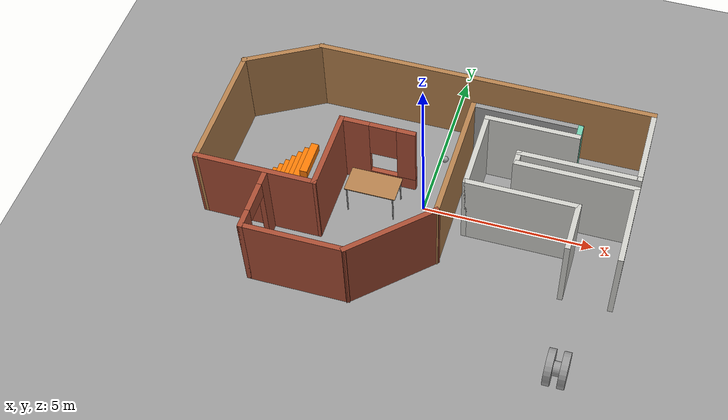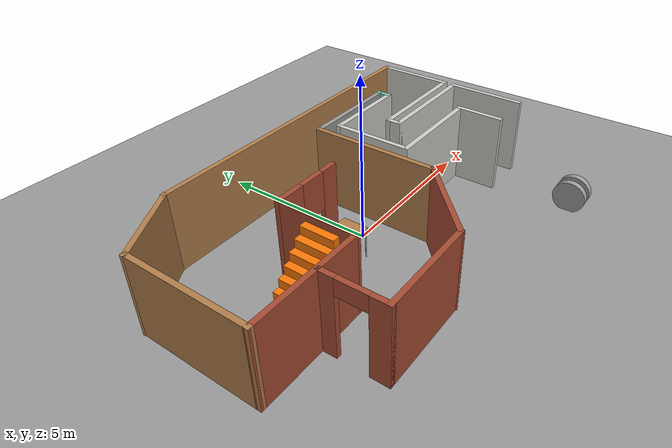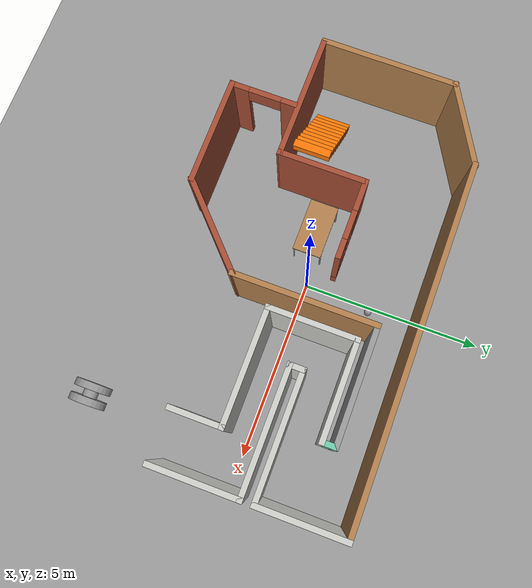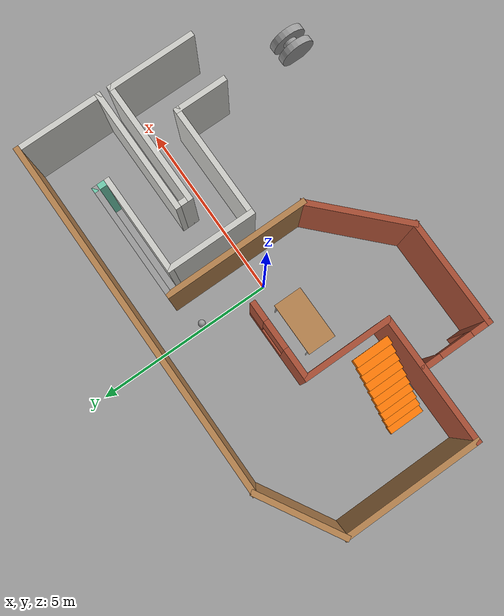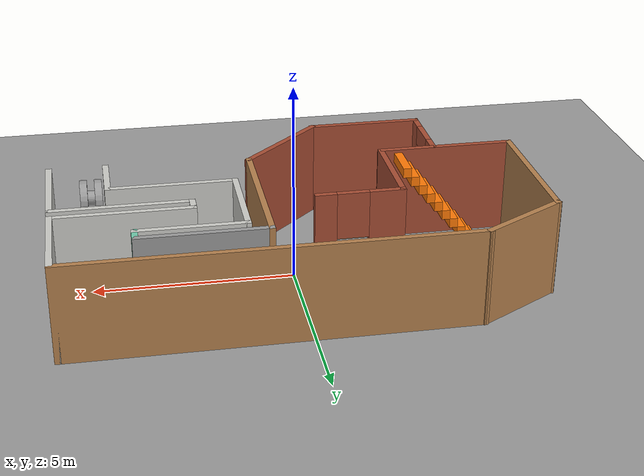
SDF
<sdf version="1.6">
 <world name="default">
  <plugin name="welcome" filename="libwelcome.so"/>
  <light name="sun" type="directional">
   <pose>0 0 10 0 -0 0</pose>
   <diffuse>0.8 0.8 0.8 1</diffuse>
   <specular>0.2 0.2 0.2 1</specular>
   <attenuation>
    <range>1000</range>
    <constant>0.9</constant>
    <linear>0.01</linear>
    <quadratic>0.001</quadratic>
   </attenuation>
   <direction>-0.5 0.1 -0.9</direction>
  </light>
  <model name="ground_plane">
   <static>1</static>
   <link name="link">
    <collision name="collision">
     <geometry><plane><normal>0 0 1</normal><size>100 100</size></plane></geometry>
     <surface>
      <contact><collide_bitmask>65535</collide_bitmask></contact>
      <friction><ode><mu>100</mu><mu2>50</mu2></ode></friction>
     </surface>
    </collision>
    <visual name="visual">
     <cast_shadows>0</cast_shadows>
     <geometry><plane><normal>0 0 1</normal><size>100 100</size></plane></geometry>
     <material>
      <script><uri>file://media/materials/scripts/gazebo.material</uri><name>Gazebo/Grey</name></script>
     </material>
    </visual>
   </link>
  </model>
  <gravity>0 0 -9.8</gravity>
  <magnetic_field>6e-06 2.3e-05 -4.2e-05</magnetic_field>
  <atmosphere type="adiabatic"/>
  <physics name="default_physics" default="0" type="ode">
   <max_step_size>0.001</max_step_size>
   <real_time_factor>1</real_time_factor>
   <real_time_update_rate>1000</real_time_update_rate>
  </physics>
  <scene><ambient>0.4 0.4 0.4 1</ambient><background>0.7 0.7 0.7 1</background><shadows>1</shadows></scene>
  <spherical_coordinates>
   <surface_model>EARTH_WGS84</surface_model>
   <latitude_deg>0</latitude_deg>
   <longitude_deg>0</longitude_deg>
   <elevation>0</elevation>
   <heading_deg>0</heading_deg>
  </spherical_coordinates>
  <model name="ground_plane_0">
   <static>1</static>
   <link name="link">
    <collision name="collision">
     <geometry><plane><normal>0 0 1</normal><size>100 100</size></plane></geometry>
     <surface>
      <contact><collide_bitmask>65535</collide_bitmask></contact>
      <friction><ode><mu>100</mu><mu2>50</mu2></ode></friction>
     </surface>
    </collision>
    <visual name="visual">
     <cast_shadows>0</cast_shadows>
     <geometry><plane><normal>0 0 1</normal><size>100 100</size></plane></geometry>
     <material>
      <script><uri>file://media/materials/scripts/gazebo.material</uri><name>Gazebo/Grey</name></script>
     </material>
    </visual>
   </link>
   <pose>-4.32759 0.777792 0 0 -0 0</pose>
  </model>
  <model name="myBuilding">
   <pose>-0.080951 -0.228793 0 0 -0 0</pose>
   <link name="Stairs_3">
    <visual name="Stairs_3_Visual_0">
     <pose>-4.79161 -0.730782 0.125 0 -0 1.5708</pose>
     <geometry><box><size>1 0.212 0.25</size></box></geometry>
     <material>
      <script><uri>file://media/materials/scripts/gazebo.material</uri><name>Gazebo/Grey</name></script>
      <ambient>0.996078 0.47451 0.0196078 1</ambient>
     </material>
     <meta><layer>0</layer></meta>
    </visual>
    <collision name="Stairs_3_Collision_0">
     <geometry><box><size>1 0.212 0.25</size></box></geometry>
     <pose>-4.79161 -0.730782 0.125 0 -0 1.5708</pose>
    </collision>
    <visual name="Stairs_3_Visual_1">
     <pose>-4.57961 -0.730782 0.375 0 -0 1.5708</pose>
     <geometry><box><size>1 0.212 0.25</size></box></geometry>
     <material>
      <script><uri>file://media/materials/scripts/gazebo.material</uri><name>Gazebo/Grey</name></script>
      <ambient>0.996078 0.47451 0.0196078 1</ambient>
     </material>
     <meta><layer>0</layer></meta>
    </visual>
    <collision name="Stairs_3_Collision_1">
     <geometry><box><size>1 0.212 0.25</size></box></geometry>
     <pose>-4.57961 -0.730782 0.375 0 -0 1.5708</pose>
    </collision>
    <visual name="Stairs_3_Visual_2">
     <pose>-4.36761 -0.730782 0.625 0 -0 1.5708</pose>
     <geometry><box><size>1 0.212 0.25</size></box></geometry>
     <material>
      <script><uri>file://media/materials/scripts/gazebo.material</uri><name>Gazebo/Grey</name></script>
      <ambient>0.996078 0.47451 0.0196078 1</ambient>
     </material>
     <meta><layer>0</layer></meta>
    </visual>
    <collision name="Stairs_3_Collision_2">
     <geometry><box><size>1 0.212 0.25</size></box></geometry>
     <pose>-4.36761 -0.730782 0.625 0 -0 1.5708</pose>
    </collision>
    <visual name="Stairs_3_Visual_3">
     <pose>-4.15561 -0.730782 0.875 0 -0 1.5708</pose>
     <geometry><box><size>1 0.212 0.25</size></box></geometry>
     <material>
      <script><uri>file://media/materials/scripts/gazebo.material</uri><name>Gazebo/Grey</name></script>
      <ambient>0.996078 0.47451 0.0196078 1</ambient>
     </material>
     <meta><layer>0</layer></meta>
    </visual>
    <collision name="Stairs_3_Collision_3">
     <geometry><box><size>1 0.212 0.25</size></box></geometry>
     <pose>-4.15561 -0.730782 0.875 0 -0 1.5708</pose>
    </collision>
    <visual name="Stairs_3_Visual_4">
     <pose>-3.94361 -0.730782 1.125 0 -0 1.5708</pose>
     <geometry><box><size>1 0.212 0.25</size></box></geometry>
     <material>
      <script><uri>file://media/materials/scripts/gazebo.material</uri><name>Gazebo/Grey</name></script>
      <ambient>0.996078 0.47451 0.0196078 1</ambient>
     </material>
     <meta><layer>0</layer></meta>
    </visual>
    <collision name="Stairs_3_Collision_4">
     <geometry><box><size>1 0.212 0.25</size></box></geometry>
     <pose>-3.94361 -0.730782 1.125 0 -0 1.5708</pose>
    </collision>
    <visual name="Stairs_3_Visual_5">
     <pose>-3.73161 -0.730782 1.375 0 -0 1.5708</pose>
     <geometry><box><size>1 0.212 0.25</size></box></geometry>
     <material>
      <script><uri>file://media/materials/scripts/gazebo.material</uri><name>Gazebo/Grey</name></script>
      <ambient>0.996078 0.47451 0.0196078 1</ambient>
     </material>
     <meta><layer>0</layer></meta>
    </visual>
    <collision name="Stairs_3_Collision_5">
     <geometry><box><size>1 0.212 0.25</size></box></geometry>
     <pose>-3.73161 -0.730782 1.375 0 -0 1.5708</pose>
    </collision>
    <visual name="Stairs_3_Visual_6">
     <pose>-3.51961 -0.730782 1.625 0 -0 1.5708</pose>
     <geometry><box><size>1 0.212 0.25</size></box></geometry>
     <material>
      <script><uri>file://media/materials/scripts/gazebo.material</uri><name>Gazebo/Grey</name></script>
      <ambient>0.996078 0.47451 0.0196078 1</ambient>
     </material>
     <meta><layer>0</layer></meta>
    </visual>
    <collision name="Stairs_3_Collision_6">
     <geometry><box><size>1 0.212 0.25</size></box></geometry>
     <pose>-3.51961 -0.730782 1.625 0 -0 1.5708</pose>
    </collision>
    <visual name="Stairs_3_Visual_7">
     <pose>-3.30761 -0.730782 1.875 0 -0 1.5708</pose>
     <geometry><box><size>1 0.212 0.25</size></box></geometry>
     <material>
      <script><uri>file://media/materials/scripts/gazebo.material</uri><name>Gazebo/Grey</name></script>
      <ambient>0.996078 0.47451 0.0196078 1</ambient>
     </material>
     <meta><layer>0</layer></meta>
    </visual>
    <collision name="Stairs_3_Collision_7">
     <geometry><box><size>1 0.212 0.25</size></box></geometry>
     <pose>-3.30761 -0.730782 1.875 0 -0 1.5708</pose>
    </collision>
    <visual name="Stairs_3_Visual_8">
     <pose>-3.09561 -0.730782 2.125 0 -0 1.5708</pose>
     <geometry><box><size>1 0.212 0.25</size></box></geometry>
     <material>
      <script><uri>file://media/materials/scripts/gazebo.material</uri><name>Gazebo/Grey</name></script>
      <ambient>0.996078 0.47451 0.0196078 1</ambient>
     </material>
     <meta><layer>0</layer></meta>
    </visual>
    <collision name="Stairs_3_Collision_8">
     <geometry><box><size>1 0.212 0.25</size></box></geometry>
     <pose>-3.09561 -0.730782 2.125 0 -0 1.5708</pose>
    </collision>
    <visual name="Stairs_3_Visual_9">
     <pose>-2.88361 -0.730782 2.375 0 -0 1.5708</pose>
     <geometry><box><size>1 0.212 0.25</size></box></geometry>
     <material>
      <script><uri>file://media/materials/scripts/gazebo.material</uri><name>Gazebo/Grey</name></script>
      <ambient>0.996078 0.47451 0.0196078 1</ambient>
     </material>
     <meta><layer>0</layer></meta>
    </visual>
    <collision name="Stairs_3_Collision_9">
     <geometry><box><size>1 0.212 0.25</size></box></geometry>
     <pose>-2.88361 -0.730782 2.375 0 -0 1.5708</pose>
    </collision>
   </link>
   <link name="Wall_12">
    <collision name="Wall_12_Collision">
     <geometry><box><size>2.5 0.15 2.5</size></box></geometry>
     <pose>0 0 1.25 0 -0 0</pose>
    </collision>
    <visual name="Wall_12_Visual">
     <pose>0 0 1.25 0 -0 0</pose>
     <geometry><box><size>2.5 0.15 2.5</size></box></geometry>
     <material>
      <script><uri>file://media/materials/scripts/gazebo.material</uri><name>Gazebo/Bricks</name></script>
      <ambient>1 1 1 1</ambient>
     </material>
     <meta><layer>0</layer></meta>
    </visual>
    <pose>-2.49077 -0.307608 0 0 0 -1.5708</pose>
   </link>
   <link name="Wall_27">
    <collision name="Wall_27_Collision">
     <geometry><box><size>3.57052 0.15 2.5</size></box></geometry>
     <pose>0 0 1.25 0 -0 0</pose>
    </collision>
    <visual name="Wall_27_Visual">
     <pose>0 0 1.25 0 -0 0</pose>
     <geometry><box><size>3.57052 0.15 2.5</size></box></geometry>
     <material>
      <script><uri>file://media/materials/scripts/gazebo.material</uri><name>Gazebo/Bricks</name></script>
      <ambient>1 1 1 1</ambient>
     </material>
     <meta><layer>0</layer></meta>
    </visual>
    <pose>-4.20104 -1.48293 0 0 -0 0.00019</pose>
   </link>
   <link name="Wall_32">
    <collision name="Wall_32_Collision">
     <geometry><box><size>2.87163 0.15 2.5</size></box></geometry>
     <pose>0 0 1.25 0 -0 0</pose>
    </collision>
    <visual name="Wall_32_Visual">
     <pose>0 0 1.25 0 -0 0</pose>
     <geometry><box><size>2.87163 0.15 2.5</size></box></geometry>
     <material>
      <script><uri>file://media/materials/scripts/gazebo.material</uri><name>Gazebo/Bricks</name></script>
      <ambient>1 1 1 1</ambient>
     </material>
     <meta><layer>0</layer></meta>
    </visual>
    <pose>-0.045348 -2.42318 0 0 -0 0.762468</pose>
   </link>
   <link name="Wall_37">
    <collision name="Wall_37_Collision">
     <geometry><box><size>2.45705 0.15 2.5</size></box></geometry>
     <pose>0 0 1.25 0 -0 0</pose>
    </collision>
    <visual name="Wall_37_Visual">
     <pose>0 0 1.25 0 -0 0</pose>
     <geometry><box><size>2.45705 0.15 2.5</size></box></geometry>
     <material>
      <script><uri>file://media/materials/scripts/gazebo.material</uri><name>Gazebo/Wood</name></script>
      <ambient>1 1 1 1</ambient>
     </material>
     <meta><layer>0</layer></meta>
    </visual>
    <pose>-4.9113 2.79174 0 0 0 -2.61976</pose>
   </link>
   <link name="Wall_39">
    <pose>-1.44077 0.867393 0 0 -0 0</pose>
    <visual name="Wall_39_Visual_0">
     <pose>-0.672762 0 1.25 0 -0 0</pose>
     <geometry><box><size>0.904475 0.15 2.5</size></box></geometry>
     <material>
      <script><uri>file://media/materials/scripts/gazebo.material</uri><name>Gazebo/Bricks</name></script>
      <ambient>1 1 1 1</ambient>
     </material>
     <meta><layer>0</layer></meta>
    </visual>
    <collision name="Wall_39_Collision_0">
     <geometry><box><size>0.904475 0.15 2.5</size></box></geometry>
     <pose>-0.672762 0 1.25 0 -0 0</pose>
    </collision>
    <visual name="Wall_39_Visual_1">
     <pose>0.452238 0 0.25 0 -0 0</pose>
     <geometry><box><size>1.34553 0.15 0.5</size></box></geometry>
     <material>
      <script><uri>file://media/materials/scripts/gazebo.material</uri><name>Gazebo/Bricks</name></script>
      <ambient>1 1 1 1</ambient>
     </material>
     <meta><layer>0</layer></meta>
    </visual>
    <collision name="Wall_39_Collision_1">
     <geometry><box><size>1.34553 0.15 0.5</size></box></geometry>
     <pose>0.452238 0 0.25 0 -0 0</pose>
    </collision>
    <visual name="Wall_39_Visual_2">
     <pose>0.852238 0 1.5 0 -0 0</pose>
     <geometry><box><size>0.545525 0.15 2</size></box></geometry>
     <material>
      <script><uri>file://media/materials/scripts/gazebo.material</uri><name>Gazebo/Bricks</name></script>
      <ambient>1 1 1 1</ambient>
     </material>
     <meta><layer>0</layer></meta>
    </visual>
    <collision name="Wall_39_Collision_2">
     <geometry><box><size>0.545525 0.15 2</size></box></geometry>
     <pose>0.852238 0 1.5 0 -0 0</pose>
    </collision>
    <visual name="Wall_39_Visual_3">
     <pose>0.179475 0 1.9 0 -0 0</pose>
     <geometry><box><size>0.8 0.15 1.2</size></box></geometry>
     <material>
      <script><uri>file://media/materials/scripts/gazebo.material</uri><name>Gazebo/Bricks</name></script>
      <ambient>1 1 1 1</ambient>
     </material>
     <meta><layer>0</layer></meta>
    </visual>
    <collision name="Wall_39_Collision_3">
     <geometry><box><size>0.8 0.15 1.2</size></box></geometry>
     <pose>0.179475 0 1.9 0 -0 0</pose>
    </collision>
   </link>
   <link name="Wall_43">
    <collision name="Wall_43_Collision">
     <geometry><box><size>4 0.15 2.5</size></box></geometry>
     <pose>0 0 1.25 0 -0 0</pose>
    </collision>
    <visual name="Wall_43_Visual">
     <pose>0 0 1.25 0 -0 0</pose>
     <geometry><box><size>4 0.15 2.5</size></box></geometry>
     <material>
      <script><uri>file://media/materials/scripts/gazebo.material</uri><name>Gazebo/Wood</name></script>
      <ambient>1 1 1 1</ambient>
     </material>
     <meta><layer>0</layer></meta>
    </visual>
    <pose>0.938702 0.441743 0 0 -0 1.5708</pose>
   </link>
   <link name="Wall_52">
    <collision name="Wall_52_Collision">
     <geometry><box><size>3.25 0.15 2.5</size></box></geometry>
     <pose>0 0 1.25 0 -0 0</pose>
    </collision>
    <visual name="Wall_52_Visual">
     <pose>0 0 1.25 0 -0 0</pose>
     <geometry><box><size>3.25 0.15 2.5</size></box></geometry>
     <material>
      <script><uri>file://media/materials/scripts/gazebo.material</uri><name>Gazebo/Grey</name></script>
      <ambient>1 1 1 1</ambient>
     </material>
     <meta><layer>0</layer></meta>
    </visual>
    <pose>2.4887 2.36674 0 0 -0 0</pose>
   </link>
   <link name="Wall_53">
    <collision name="Wall_53_Collision">
     <geometry><box><size>0.5 0.15 2.5</size></box></geometry>
     <pose>0 0 1.25 0 -0 0</pose>
    </collision>
    <visual name="Wall_53_Visual">
     <pose>0 0 1.25 0 -0 0</pose>
     <geometry><box><size>0.5 0.15 2.5</size></box></geometry>
     <material>
      <script><uri>file://media/materials/scripts/gazebo.material</uri><name>Gazebo/Grey</name></script>
      <ambient>0.435294 0.796078 0.67451 1</ambient>
     </material>
     <meta><layer>0</layer></meta>
    </visual>
    <pose>4.0387 2.19174 0 0 0 -1.5708</pose>
   </link>
   <link name="Wall_54">
    <collision name="Wall_54_Collision">
     <geometry><box><size>2.75 0.15 2.5</size></box></geometry>
     <pose>0 0 1.25 0 -0 0</pose>
    </collision>
    <visual name="Wall_54_Visual">
     <pose>0 0 1.25 0 -0 0</pose>
     <geometry><box><size>2.75 0.15 2.5</size></box></geometry>
     <material>
      <script><uri>file://media/materials/scripts/gazebo.material</uri><name>Gazebo/CeilingTiled</name></script>
      <ambient>0.435294 0.796078 0.67451 1</ambient>
     </material>
     <meta><layer>0</layer></meta>
    </visual>
    <pose>2.7387 2.01674 0 0 -0 3.14159</pose>
   </link>
   <link name="Wall_55">
    <collision name="Wall_55_Collision">
     <geometry><box><size>2.5 0.15 2.5</size></box></geometry>
     <pose>0 0 1.25 0 -0 0</pose>
    </collision>
    <visual name="Wall_55_Visual">
     <pose>0 0 1.25 0 -0 0</pose>
     <geometry><box><size>2.5 0.15 2.5</size></box></geometry>
     <material>
      <script><uri>file://media/materials/scripts/gazebo.material</uri><name>Gazebo/CeilingTiled</name></script>
      <ambient>0.435294 0.796078 0.67451 1</ambient>
     </material>
     <meta><layer>0</layer></meta>
    </visual>
    <pose>1.4387 0.841743 0 0 0 -1.5708</pose>
   </link>
   <link name="Wall_58">
    <collision name="Wall_58_Collision">
     <geometry><box><size>10 0.15 2.5</size></box></geometry>
     <pose>0 0 1.25 0 -0 0</pose>
    </collision>
    <visual name="Wall_58_Visual">
     <pose>0 0 1.25 0 -0 0</pose>
     <geometry><box><size>10 0.15 2.5</size></box></geometry>
     <material>
      <script><uri>file://media/materials/scripts/gazebo.material</uri><name>Gazebo/Wood</name></script>
      <ambient>1 1 1 1</ambient>
     </material>
     <meta><layer>0</layer></meta>
    </visual>
    <pose>1.0137 3.36674 0 0 -0 0</pose>
   </link>
   <link name="Wall_59">
    <collision name="Wall_59_Collision">
     <geometry><box><size>2.5 0.15 2.5</size></box></geometry>
     <pose>0 0 1.25 0 -0 0</pose>
    </collision>
    <visual name="Wall_59_Visual">
     <pose>0 0 1.25 0 -0 0</pose>
     <geometry><box><size>2.5 0.15 2.5</size></box></geometry>
     <material>
      <script><uri>file://media/materials/scripts/gazebo.material</uri><name>Gazebo/CeilingTiled</name></script>
      <ambient>0.435294 0.796078 0.67451 1</ambient>
     </material>
     <meta><layer>0</layer></meta>
    </visual>
    <pose>5.9387 2.19174 0 0 0 -1.5708</pose>
   </link>
   <link name="Wall_6">
    <pose>-3.8794 -2.43811 0 0 0 -1.5708</pose>
    <visual name="Wall_6_Visual_0">
     <pose>-0.734423 0 1.25 0 -0 0</pose>
     <geometry><box><size>0.531154 0.15 2.5</size></box></geometry>
     <material>
      <script><uri>file://media/materials/scripts/gazebo.material</uri><name>Gazebo/Bricks</name></script>
      <ambient>1 1 1 1</ambient>
     </material>
     <meta><layer>0</layer></meta>
    </visual>
    <collision name="Wall_6_Collision_0">
     <geometry><box><size>0.531154 0.15 2.5</size></box></geometry>
     <pose>-0.734423 0 1.25 0 -0 0</pose>
    </collision>
    <visual name="Wall_6_Visual_1">
     <pose>0.715577 0 1.25 0 -0 0</pose>
     <geometry><box><size>0.568846 0.15 2.5</size></box></geometry>
     <material>
      <script><uri>file://media/materials/scripts/gazebo.material</uri><name>Gazebo/Bricks</name></script>
      <ambient>1 1 1 1</ambient>
     </material>
     <meta><layer>0</layer></meta>
    </visual>
    <collision name="Wall_6_Collision_1">
     <geometry><box><size>0.568846 0.15 2.5</size></box></geometry>
     <pose>0.715577 0 1.25 0 -0 0</pose>
    </collision>
    <visual name="Wall_6_Visual_2">
     <pose>-0.018846 0 2.25 0 -0 0</pose>
     <geometry><box><size>0.9 0.15 0.5</size></box></geometry>
     <material>
      <script><uri>file://media/materials/scripts/gazebo.material</uri><name>Gazebo/Bricks</name></script>
      <ambient>1 1 1 1</ambient>
     </material>
     <meta><layer>0</layer></meta>
    </visual>
    <collision name="Wall_6_Collision_2">
     <geometry><box><size>0.9 0.15 0.5</size></box></geometry>
     <pose>-0.018846 0 2.25 0 -0 0</pose>
    </collision>
   </link>
   <link name="Wall_60">
    <collision name="Wall_60_Collision">
     <geometry><box><size>3.5 0.15 2.5</size></box></geometry>
     <pose>0 0 1.25 0 -0 0</pose>
    </collision>
    <visual name="Wall_60_Visual">
     <pose>0 0 1.25 0 -0 0</pose>
     <geometry><box><size>3.5 0.15 2.5</size></box></geometry>
     <material>
      <script><uri>file://media/materials/scripts/gazebo.material</uri><name>Gazebo/CeilingTiled</name></script>
      <ambient>0.435294 0.796078 0.67451 1</ambient>
     </material>
     <meta><layer>0</layer></meta>
    </visual>
    <pose>4.2637 1.01674 0 0 -0 3.14159</pose>
   </link>
   <link name="Wall_61">
    <collision name="Wall_61_Collision">
     <geometry><box><size>0.5 0.15 2.5</size></box></geometry>
     <pose>0 0 1.25 0 -0 0</pose>
    </collision>
    <visual name="Wall_61_Visual">
     <pose>0 0 1.25 0 -0 0</pose>
     <geometry><box><size>0.5 0.15 2.5</size></box></geometry>
     <material>
      <script><uri>file://media/materials/scripts/gazebo.material</uri><name>Gazebo/CeilingTiled</name></script>
      <ambient>0.435294 0.796078 0.67451 1</ambient>
     </material>
     <meta><layer>0</layer></meta>
    </visual>
    <pose>2.5887 0.841743 0 0 0 -1.5708</pose>
   </link>
   <link name="Wall_64">
    <collision name="Wall_64_Collision">
     <geometry><box><size>3.5 0.15 2.5</size></box></geometry>
     <pose>0 0 1.25 0 -0 0</pose>
    </collision>
    <visual name="Wall_64_Visual">
     <pose>0 0 1.25 0 -0 0</pose>
     <geometry><box><size>3.5 0.15 2.5</size></box></geometry>
     <material>
      <script><uri>file://media/materials/scripts/gazebo.material</uri><name>Gazebo/CeilingTiled</name></script>
      <ambient>0.435294 0.796078 0.67451 1</ambient>
     </material>
     <meta><layer>0</layer></meta>
    </visual>
    <pose>4.2637 0.666743 0 0 -0 0</pose>
   </link>
   <link name="Wall_66">
    <collision name="Wall_66_Collision">
     <geometry><box><size>3.25 0.15 2.5</size></box></geometry>
     <pose>0 0 1.25 0 -0 0</pose>
    </collision>
    <visual name="Wall_66_Visual">
     <pose>0 0 1.25 0 -0 0</pose>
     <geometry><box><size>3.25 0.15 2.5</size></box></geometry>
     <material>
      <script><uri>file://media/materials/scripts/gazebo.material</uri><name>Gazebo/CeilingTiled</name></script>
      <ambient>0.435294 0.796078 0.67451 1</ambient>
     </material>
     <meta><layer>0</layer></meta>
    </visual>
    <pose>2.9887 -0.333257 0 0 -0 0</pose>
   </link>
   <link name="Wall_67">
    <collision name="Wall_67_Collision">
     <geometry><box><size>1.5 0.15 2.5</size></box></geometry>
     <pose>0 0 1.25 0 -0 0</pose>
    </collision>
    <visual name="Wall_67_Visual">
     <pose>0 0 1.25 0 -0 0</pose>
     <geometry><box><size>1.5 0.15 2.5</size></box></geometry>
     <material>
      <script><uri>file://media/materials/scripts/gazebo.material</uri><name>Gazebo/CeilingTiled</name></script>
      <ambient>0.435294 0.796078 0.67451 1</ambient>
     </material>
     <meta><layer>0</layer></meta>
    </visual>
    <pose>4.5387 -1.00826 0 0 0 -1.5708</pose>
   </link>
   <link name="Wall_69">
    <collision name="Wall_69_Collision">
     <geometry><box><size>2.5 0.15 2.5</size></box></geometry>
     <pose>0 0 1.25 0 -0 0</pose>
    </collision>
    <visual name="Wall_69_Visual">
     <pose>0 0 1.25 0 -0 0</pose>
     <geometry><box><size>2.5 0.15 2.5</size></box></geometry>
     <material>
      <script><uri>file://media/materials/scripts/gazebo.material</uri><name>Gazebo/CeilingTiled</name></script>
      <ambient>0.435294 0.796078 0.67451 1</ambient>
     </material>
     <meta><layer>0</layer></meta>
    </visual>
    <pose>5.9387 -0.508258 0 0 0 -1.5708</pose>
   </link>
   <link name="Wall_7">
    <collision name="Wall_7_Collision">
     <geometry><box><size>3 0.15 2.5</size></box></geometry>
     <pose>0 0 1.25 0 -0 0</pose>
    </collision>
    <visual name="Wall_7_Visual">
     <pose>0 0 1.25 0 -0 0</pose>
     <geometry><box><size>3 0.15 2.5</size></box></geometry>
     <material>
      <script><uri>file://media/materials/scripts/gazebo.material</uri><name>Gazebo/Bricks</name></script>
      <ambient>1 1 1 1</ambient>
     </material>
     <meta><layer>0</layer></meta>
    </visual>
    <pose>-2.4544 -3.36311 0 0 -0 0</pose>
   </link>
   <link name="Wall_71">
    <collision name="Wall_71_Collision">
     <geometry><box><size>3.85 0.15 2.5</size></box></geometry>
     <pose>0 0 1.25 0 -0 0</pose>
    </collision>
    <visual name="Wall_71_Visual">
     <pose>0 0 1.25 0 -0 0</pose>
     <geometry><box><size>3.85 0.15 2.5</size></box></geometry>
     <material>
      <script><uri>file://media/materials/scripts/gazebo.material</uri><name>Gazebo/Wood</name></script>
      <ambient>1 1 1 1</ambient>
     </material>
     <meta><layer>0</layer></meta>
    </visual>
    <pose>-5.9113 0.366743 0 0 0 -1.5708</pose>
   </link>
   <static>1</static>
  </model>
  <model name="myModel">
   <link name="link_0">
    <pose>0.000366 0 0 0 -0 0</pose>
    <inertial>
     <mass>1</mass>
     <inertia><ixx>0.145833</ixx><ixy>0</ixy><ixz>0</ixz><iyy>0.145833</iyy><iyz>0</iyz><izz>0.125</izz></inertia>
    </inertial>
    <visual name="visual">
     <pose>0 0 0 0 1.5707 0</pose>
     <geometry><cylinder><radius>0.2</radius><length>0.2</length></cylinder></geometry>
     <material>
      <lighting>1</lighting>
      <script><uri>file://media/materials/scripts/gazebo.material</uri><name>Gazebo/Grey</name></script>
      <shader type="pixel"><normal_map>__default__</normal_map></shader>
      <ambient>0.3 0.3 0.3 1</ambient>
      <diffuse>0.7 0.7 0.7 1</diffuse>
      <specular>0.01 0.01 0.01 1</specular>
      <emissive>0 0 0 1</emissive>
     </material>
    </visual>
    <collision name="collision">
     <pose>0 0 0 0 1.5707 0</pose>
     <geometry><cylinder><radius>0.2</radius><length>0.2</length></cylinder></geometry>
     <surface>
      <friction>
       <ode><mu>1</mu><mu2>1</mu2><fdir1>0 0 0</fdir1><slip1>0</slip1><slip2>0</slip2></ode>
       <torsional>
        <coefficient>1</coefficient>
        <patch_radius>0</patch_radius>
        <surface_radius>0</surface_radius>
        <use_patch_radius>1</use_patch_radius>
        <ode><slip>0</slip></ode>
       </torsional>
      </friction>
      <bounce><restitution_coefficient>0</restitution_coefficient><threshold>1e+06</threshold></bounce>
      <contact>
       <collide_without_contact>0</collide_without_contact>
       <collide_without_contact_bitmask>1</collide_without_contact_bitmask>
       <collide_bitmask>1</collide_bitmask>
       <ode>
        <soft_cfm>0</soft_cfm>
        <soft_erp>0.2</soft_erp>
        <kp>1e+13</kp>
        <kd>1</kd>
        <max_vel>0.01</max_vel>
        <min_depth>0</min_depth>
       </ode>
       <bullet>
        <split_impulse>1</split_impulse>
        <split_impulse_penetration_threshold>-0.01</split_impulse_penetration_threshold>
        <soft_cfm>0</soft_cfm>
        <soft_erp>0.2</soft_erp>
        <kp>1e+13</kp>
        <kd>1</kd>
       </bullet>
      </contact>
     </surface>
    </collision>
   </link>
   <link name="link_1_clone_clone">
    <pose>0.199332 0 0 0 -0 0</pose>
    <inertial>
     <mass>1</mass>
     <inertia><ixx>0.145833</ixx><ixy>0</ixy><ixz>0</ixz><iyy>0.145833</iyy><iyz>0</iyz><izz>0.125</izz></inertia>
    </inertial>
    <visual name="visual">
     <pose>0 0 0 0 1.5707 0</pose>
     <geometry><cylinder><radius>0.5</radius><length>0.2</length></cylinder></geometry>
     <material>
      <lighting>1</lighting>
      <script><uri>file://media/materials/scripts/gazebo.material</uri><name>Gazebo/Grey</name></script>
      <shader type="pixel"><normal_map>__default__</normal_map></shader>
      <ambient>0.3 0.3 0.3 1</ambient>
      <diffuse>0.7 0.7 0.7 1</diffuse>
      <specular>0.01 0.01 0.01 1</specular>
      <emissive>0 0 0 1</emissive>
     </material>
    </visual>
    <collision name="collision">
     <pose>0 0 0 0 1.5707 0</pose>
     <geometry><cylinder><radius>0.5</radius><length>0.2</length></cylinder></geometry>
     <surface>
      <friction>
       <ode><mu>1</mu><mu2>1</mu2><fdir1>0 0 0</fdir1><slip1>0</slip1><slip2>0</slip2></ode>
       <torsional>
        <coefficient>1</coefficient>
        <patch_radius>0</patch_radius>
        <surface_radius>0</surface_radius>
        <use_patch_radius>1</use_patch_radius>
        <ode><slip>0</slip></ode>
       </torsional>
      </friction>
      <bounce><restitution_coefficient>0</restitution_coefficient><threshold>1e+06</threshold></bounce>
      <contact>
       <collide_without_contact>0</collide_without_contact>
       <collide_without_contact_bitmask>1</collide_without_contact_bitmask>
       <collide_bitmask>1</collide_bitmask>
       <ode>
        <soft_cfm>0</soft_cfm>
        <soft_erp>0.2</soft_erp>
        <kp>1e+13</kp>
        <kd>1</kd>
        <max_vel>0.01</max_vel>
        <min_depth>0</min_depth>
       </ode>
       <bullet>
        <split_impulse>1</split_impulse>
        <split_impulse_penetration_threshold>-0.01</split_impulse_penetration_threshold>
        <soft_cfm>0</soft_cfm>
        <soft_erp>0.2</soft_erp>
        <kp>1e+13</kp>
        <kd>1</kd>
       </bullet>
      </contact>
     </surface>
    </collision>
   </link>
   <link name="link_1_clone_clone_clone">
    <pose>-0.199701 0 0 0 -0 0</pose>
    <inertial>
     <mass>1</mass>
     <inertia><ixx>0.145833</ixx><ixy>0</ixy><ixz>0</ixz><iyy>0.145833</iyy><iyz>0</iyz><izz>0.125</izz></inertia>
    </inertial>
    <visual name="visual">
     <pose>0 0 0 0 1.5707 0</pose>
     <geometry><cylinder><radius>0.5</radius><length>0.2</length></cylinder></geometry>
     <material>
      <lighting>1</lighting>
      <script><uri>file://media/materials/scripts/gazebo.material</uri><name>Gazebo/Grey</name></script>
      <shader type="pixel"><normal_map>__default__</normal_map></shader>
      <ambient>0.3 0.3 0.3 1</ambient>
      <diffuse>0.7 0.7 0.7 1</diffuse>
      <specular>0.01 0.01 0.01 1</specular>
      <emissive>0 0 0 1</emissive>
     </material>
    </visual>
    <collision name="collision">
     <pose>0 0 0 0 1.5707 0</pose>
     <geometry><cylinder><radius>0.5</radius><length>0.2</length></cylinder></geometry>
     <surface>
      <friction>
       <ode><mu>1</mu><mu2>1</mu2><fdir1>0 0 0</fdir1><slip1>0</slip1><slip2>0</slip2></ode>
       <torsional>
        <coefficient>1</coefficient>
        <patch_radius>0</patch_radius>
        <surface_radius>0</surface_radius>
        <use_patch_radius>1</use_patch_radius>
        <ode><slip>0</slip></ode>
       </torsional>
      </friction>
      <bounce><restitution_coefficient>0</restitution_coefficient><threshold>1e+06</threshold></bounce>
      <contact>
       <collide_without_contact>0</collide_without_contact>
       <collide_without_contact_bitmask>1</collide_without_contact_bitmask>
       <collide_bitmask>1</collide_bitmask>
       <ode>
        <soft_cfm>0</soft_cfm>
        <soft_erp>0.2</soft_erp>
        <kp>1e+13</kp>
        <kd>1</kd>
        <max_vel>0.01</max_vel>
        <min_depth>0</min_depth>
       </ode>
       <bullet>
        <split_impulse>1</split_impulse>
        <split_impulse_penetration_threshold>-0.01</split_impulse_penetration_threshold>
        <soft_cfm>0</soft_cfm>
        <soft_erp>0.2</soft_erp>
        <kp>1e+13</kp>
        <kd>1</kd>
       </bullet>
      </contact>
     </surface>
    </collision>
   </link>
   <joint name="link_0_JOINT_3" type="revolute">
    <parent>link_0</parent>
    <child>link_1_clone_clone_clone</child>
    <axis>
     <xyz>1 0 0</xyz>
     <use_parent_model_frame>0</use_parent_model_frame>
     <limit>
      <lower>-1.79769e+308</lower>
      <upper>1.79769e+308</upper>
      <effort>-1</effort>
      <velocity>-1</velocity>
     </limit>
     <dynamics>
      <spring_reference>0</spring_reference>
      <spring_stiffness>0</spring_stiffness>
      <damping>0</damping>
     </dynamics>
    </axis>
    <physics>
     <ode><limit><cfm>0</cfm><erp>0.2</erp></limit><suspension><cfm>0</cfm><erp>0.2</erp></suspension></ode>
    </physics>
   </joint>
   <joint name="link_0_JOINT_4" type="revolute">
    <parent>link_0</parent>
    <child>link_1_clone_clone</child>
    <axis>
     <xyz>1 0 0</xyz>
     <use_parent_model_frame>0</use_parent_model_frame>
     <limit>
      <lower>-1.79769e+308</lower>
      <upper>1.79769e+308</upper>
      <effort>-1</effort>
      <velocity>-1</velocity>
     </limit>
     <dynamics>
      <spring_reference>0</spring_reference>
      <spring_stiffness>0</spring_stiffness>
      <damping>0</damping>
     </dynamics>
    </axis>
    <physics>
     <ode><limit><cfm>0</cfm><erp>0.2</erp></limit><suspension><cfm>0</cfm><erp>0.2</erp></suspension></ode>
    </physics>
   </joint>
   <static>0</static>
   <pose>4.87146 -4.37487 0.50001 0 2e-06 0</pose>
  </model>
  <model name="table">
   <static>1</static>
   <link name="link">
    <collision name="surface">
     <pose>0 0 1 0 -0 0</pose>
     <geometry><box><size>1.5 0.8 0.03</size></box></geometry>
     <surface><friction><ode><mu>0.6</mu><mu2>0.6</mu2></ode></friction></surface>
    </collision>
    <visual name="visual1">
     <pose>0 0 1 0 -0 0</pose>
     <geometry><box><size>1.5 0.8 0.03</size></box></geometry>
     <material>
      <script><uri>file://media/materials/scripts/gazebo.material</uri><name>Gazebo/Wood</name></script>
     </material>
    </visual>
    <collision name="front_left_leg">
     <pose>0.68 0.38 0.5 0 -0 0</pose>
     <geometry><cylinder><radius>0.02</radius><length>1</length></cylinder></geometry>
    </collision>
    <visual name="front_left_leg">
     <pose>0.68 0.38 0.5 0 -0 0</pose>
     <geometry><cylinder><radius>0.02</radius><length>1</length></cylinder></geometry>
     <material>
      <script><uri>file://media/materials/scripts/gazebo.material</uri><name>Gazebo/Grey</name></script>
     </material>
    </visual>
    <collision name="front_right_leg">
     <pose>0.68 -0.38 0.5 0 -0 0</pose>
     <geometry><cylinder><radius>0.02</radius><length>1</length></cylinder></geometry>
    </collision>
    <visual name="front_right_leg">
     <pose>0.68 -0.38 0.5 0 -0 0</pose>
     <geometry><cylinder><radius>0.02</radius><length>1</length></cylinder></geometry>
     <material>
      <script><uri>file://media/materials/scripts/gazebo.material</uri><name>Gazebo/Grey</name></script>
     </material>
    </visual>
    <collision name="back_right_leg">
     <pose>-0.68 -0.38 0.5 0 -0 0</pose>
     <geometry><cylinder><radius>0.02</radius><length>1</length></cylinder></geometry>
    </collision>
    <visual name="back_right_leg">
     <pose>-0.68 -0.38 0.5 0 -0 0</pose>
     <geometry><cylinder><radius>0.02</radius><length>1</length></cylinder></geometry>
     <material>
      <script><uri>file://media/materials/scripts/gazebo.material</uri><name>Gazebo/Grey</name></script>
     </material>
    </visual>
    <collision name="back_left_leg">
     <pose>-0.68 0.38 0.5 0 -0 0</pose>
     <geometry><cylinder><radius>0.02</radius><length>1</length></cylinder></geometry>
    </collision>
    <visual name="back_left_leg">
     <pose>-0.68 0.38 0.5 0 -0 0</pose>
     <geometry><cylinder><radius>0.02</radius><length>1</length></cylinder></geometry>
     <material>
      <script><uri>file://media/materials/scripts/gazebo.material</uri><name>Gazebo/Grey</name></script>
     </material>
    </visual>
   </link>
   <pose>-1.3994 -0.256456 0 0 -0 0</pose>
  </model>
  <model name="my_ball">
   <link name="link_0">
    <inertial>
     <mass>1</mass>
     <inertia><ixx>0.1</ixx><ixy>0</ixy><ixz>0</ixz><iyy>0.1</iyy><iyz>0</iyz><izz>0.1</izz></inertia>
    </inertial>
    <visual name="visual">
     <geometry><sphere><radius>0.1</radius></sphere></geometry>
     <material>
      <lighting>1</lighting>
      <script><uri>file://media/materials/scripts/gazebo.material</uri><name>Gazebo/Grey</name></script>
      <shader type="pixel"><normal_map>__default__</normal_map></shader>
      <ambient>1 1 1 1</ambient>
      <diffuse>1 1 1 1</diffuse>
      <specular>1 1 1 1</specular>
      <emissive>1 1 1 1</emissive>
     </material>
    </visual>
    <collision name="collision">
     <geometry><sphere><radius>0.1</radius></sphere></geometry>
     <surface>
      <friction>
       <ode><mu>1</mu><mu2>1</mu2><fdir1>0 0 0</fdir1><slip1>0</slip1><slip2>0</slip2></ode>
       <torsional>
        <coefficient>1</coefficient>
        <patch_radius>0</patch_radius>
        <surface_radius>0</surface_radius>
        <use_patch_radius>1</use_patch_radius>
        <ode><slip>0</slip></ode>
       </torsional>
      </friction>
      <bounce><restitution_coefficient>0</restitution_coefficient><threshold>1e+06</threshold></bounce>
      <contact>
       <collide_without_contact>0</collide_without_contact>
       <collide_without_contact_bitmask>1</collide_without_contact_bitmask>
       <collide_bitmask>1</collide_bitmask>
       <ode>
        <soft_cfm>0</soft_cfm>
        <soft_erp>0.2</soft_erp>
        <kp>1e+13</kp>
        <kd>1</kd>
        <max_vel>0.01</max_vel>
        <min_depth>0</min_depth>
       </ode>
       <bullet>
        <split_impulse>1</split_impulse>
        <split_impulse_penetration_threshold>-0.01</split_impulse_penetration_threshold>
        <soft_cfm>0</soft_cfm>
        <soft_erp>0.2</soft_erp>
        <kp>1e+13</kp>
        <kd>1</kd>
       </bullet>
      </contact>
     </surface>
    </collision>
   </link>
   <static>0</static>
   <pose>0.135663 1.87006 0.09999 0 -0 0</pose>
  </model>
 </world>
</sdf>
